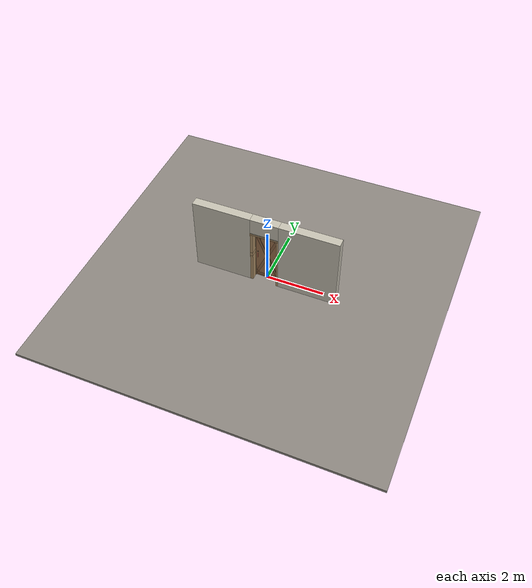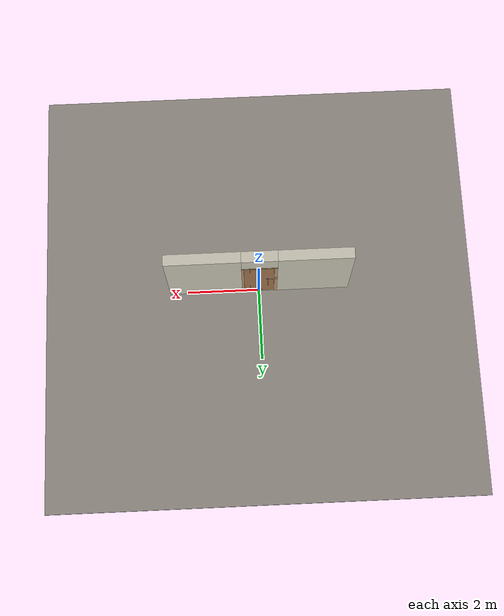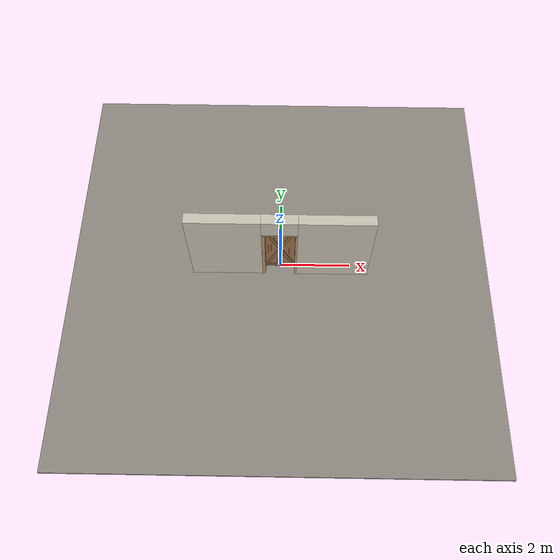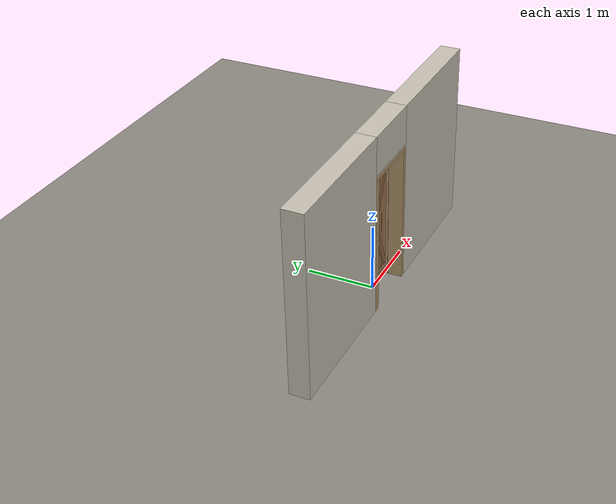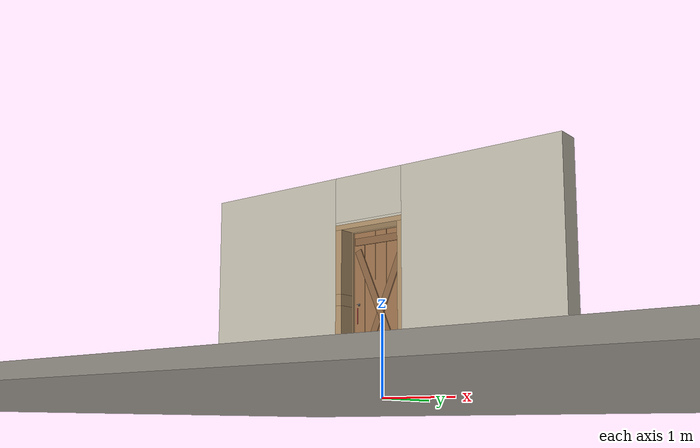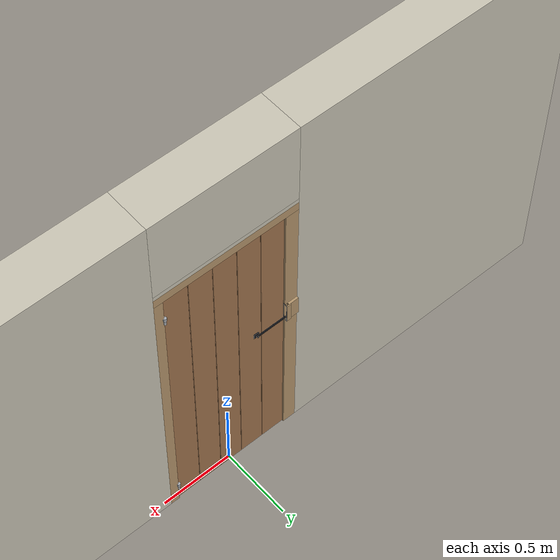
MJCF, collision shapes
<?xml version="1.0" ?>
<mujoco model="db0243_swing_single_full">
  <compiler angle="radian" meshdir="../../hardware" texturedir="../../textures" autolimits="true" inertiafromgeom="false"/>
  <option timestep="0.002" integrator="implicitfast" cone="elliptic" impratio="10" noslip_iterations="3">
    <flag multiccd="enable"/>
  </option>
  <size memory="16M"/>
  <default>
    <geom condim="4" solref="0.005 1" solimp="0.95 0.99 0.001"/>
    <joint solreflimit="0.005 1" solimplimit="0.95 0.99 0.001"/>
    <tendon solreflimit="0.005 1"/>
    <equality solref="0.002 1"/>
  </default>
  <visual>
    <headlight ambient="0.4 0.4 0.4" diffuse="0.7 0.7 0.7" specular="0.2 0.2 0.2"/>
    <quality shadowsize="4096"/>
    <map znear="0.01" zfar="60"/>
  </visual>
  <asset>
    <mesh name="peephole_f829311a59" file="peephole_f829311a59.obj"/>
    <mesh name="strap_hinge_78d1bbb966" file="strap_hinge_78d1bbb966.obj"/>
    <mesh name="thumb_latch_0073ea78ed" file="thumb_latch_0073ea78ed.obj"/>
    <material name="mat_floor" rgba="0.55 0.53 0.5 1" specular="0.2" shininess="0.15" reflectance="0"/>
    <material name="mat_wall" rgba="0.78 0.76 0.7 1" specular="0.2" shininess="0.1" reflectance="0"/>
    <material name="mat_leaf" rgba="0.62 0.45 0.3 1" specular="0.2" shininess="0.5" reflectance="0"/>
    <material name="mat_leaf_brace" rgba="0.558 0.405 0.27 1" specular="0.2" shininess="0.2" reflectance="0"/>
    <material name="mat_hinge" rgba="0.65 0.66 0.68 1" specular="0.74" shininess="0.5" reflectance="0.36"/>
    <material name="mat_op_wrought_iron" rgba="0.08 0.08 0.09 1" specular="0.56" shininess="0.25" reflectance="0.24"/>
    <material name="mat_frame" rgba="0.7 0.58 0.42 1" specular="0.2" shininess="0.5" reflectance="0"/>
    <material name="mat_peephole" rgba="0.85 0.66 0.3 1" specular="0.8" shininess="0.75" reflectance="0.4"/>
    <texture name="skybox" type="skybox" builtin="gradient" rgb1="0.6 0.7 0.85" rgb2="0.9 0.92 0.95" width="256" height="256"/>
  </asset>
  <worldbody>
    <light name="sun" pos="1.5 -2.5 4" dir="-0.3 0.5 -0.8" directional="true" diffuse="0.8 0.8 0.8" specular="0.3 0.3 0.3" castshadow="true"/>
    <light name="fill" pos="-1.5 2.5 3" dir="0.3 -0.5 -0.7" directional="true" diffuse="0.35 0.35 0.4" castshadow="false"/>
    <camera name="robot_view" pos="0 -2.663187 1.734312" xyaxes="1 0 0 0 0.26963 0.962964" fovy="52"/>
    <camera name="far_view" pos="0 2.421187 1.734312" xyaxes="-1 0 0 0 -0.26963 0.962964" fovy="52"/>
    <camera name="iso" pos="-1.932062 -2.256438 2.141063" xyaxes="0.741536 -0.670913 0 0.242917 0.268487 0.932151" fovy="46"/>
    <camera name="detail_handle" pos="-0.1455 -0.857 1.28" xyaxes="0.97561 0.219512 0 -0.070934 0.315262 0.94635" fovy="38"/>
    <geom name="floor" type="box" size="6 6 0.05" pos="0 0 -0.05" material="mat_floor" group="0" contype="1" conaffinity="1" friction="0.8 0.005 0.0001" density="2400"/>
    <geom name="wall_left" type="box" size="0.99975 0.15 1.35" pos="-1.50025 -0.121 1.35" material="mat_wall" group="0" contype="1" conaffinity="1" friction="0.6 0.005 0.0001" density="800"/>
    <geom name="wall_right" type="box" size="1.01475 0.15 1.35" pos="1.48525 -0.121 1.35" material="mat_wall" group="0" contype="1" conaffinity="1" friction="0.6 0.005 0.0001" density="800"/>
    <geom name="wall_header" type="box" size="0.4855 0.15 0.2825" pos="-0.015 -0.121 2.4175" material="mat_wall" group="0" contype="1" conaffinity="1" friction="0.6 0.005 0.0001" density="800"/>
    <geom name="hinge_pintle_0" type="cylinder" size="0.008 0.02" pos="0.4075 0.029 0.133" material="mat_hinge" group="1" contype="0" conaffinity="0" density="7850"/>
    <geom name="hinge_pintle_1" type="cylinder" size="0.008 0.02" pos="0.4075 0.029 1.865" material="mat_hinge" group="1" contype="0" conaffinity="0" density="7850"/>
    <geom name="leaf_latch_bar_keeper_b" type="box" size="0.015 0.0025 0.0005" pos="-0.41 0.034 1.1125" quat="0.5 0.5 0.5 0.5" material="mat_op_wrought_iron" group="1" contype="0" conaffinity="0" density="7800"/>
    <geom name="leaf_latch_bar_keeper_l" type="box" size="0.0025 0.07 0.0005" pos="-0.41 0.0215 1.185" quat="0.5 0.5 0.5 0.5" material="mat_op_wrought_iron" group="1" contype="0" conaffinity="0" density="7800"/>
    <geom name="leaf_latch_bar_keeper_t" type="box" size="0.015 0.0025 0.0005" pos="-0.41 0.034 1.2575" quat="0.5 0.5 0.5 0.5" material="mat_op_wrought_iron" group="1" contype="0" conaffinity="0" density="7800"/>
    <geom name="leaf_latch_bar_keeper_r" type="box" size="0.0025 0.07 0.0005" pos="-0.41 0.0465 1.185" quat="0.5 0.5 0.5 0.5" material="mat_op_wrought_iron" group="1" contype="0" conaffinity="0" density="7800"/>
    <geom name="jamb_hinge" type="box" size="0.03 0.15 1.0225" pos="0.4405 -0.121 1.0225" material="mat_frame" group="0" contype="1" conaffinity="1" friction="0.6 0.005 0.0001" density="750"/>
    <geom name="strike_1185_wall_n" type="box" size="0.045 0.1475 0.07" pos="-0.4555 -0.1235 1.185" material="mat_frame" group="0" contype="1" conaffinity="1" friction="0.6 0.005 0.0001" density="750"/>
    <geom name="strike_1185_wall_p" type="box" size="0.015 0.003 0.07" pos="-0.4255 0.047 1.185" material="mat_frame" group="0" contype="1" conaffinity="1" friction="0.6 0.005 0.0001" density="750"/>
    <geom name="strike_1185_back" type="box" size="0.035 0.01 0.07" pos="-0.4655 0.034 1.185" material="mat_frame" group="0" contype="1" conaffinity="1" friction="0.6 0.005 0.0001" density="750"/>
    <geom name="jamb_strike_0" type="box" size="0.045 0.15 0.5575" pos="-0.4555 -0.121 0.5575" material="mat_frame" group="0" contype="1" conaffinity="1" friction="0.6 0.005 0.0001" density="750"/>
    <geom name="jamb_strike_1" type="box" size="0.045 0.15 0.395" pos="-0.4555 -0.121 1.65" material="mat_frame" group="0" contype="1" conaffinity="1" friction="0.6 0.005 0.0001" density="750"/>
    <geom name="jamb_head" type="box" size="0.4855 0.15 0.03" pos="-0.015 -0.121 2.075" material="mat_frame" group="0" contype="1" conaffinity="1" friction="0.6 0.005 0.0001" density="750"/>
    <geom name="head_stud" type="box" size="0.4855 0.15 0.015" pos="-0.015 -0.121 2.12" material="mat_wall" group="0" contype="1" conaffinity="1" friction="0.6 0.005 0.0001" density="500"/>
    <geom name="stop_hinge" type="box" size="0.0055 0.016 1.0225" pos="0.405 -0.0385 1.0225" material="mat_frame" group="0" contype="1" conaffinity="1" friction="0.6 0.005 0.0001" density="750"/>
    <geom name="stop_strike" type="box" size="0.0055 0.016 1.0225" pos="-0.405 -0.0385 1.0225" material="mat_frame" group="0" contype="1" conaffinity="1" friction="0.6 0.005 0.0001" density="750"/>
    <geom name="stop_head" type="box" size="0.4105 0.016 0.0055" pos="0 -0.0385 2.0395" material="mat_frame" group="0" contype="1" conaffinity="1" friction="0.6 0.005 0.0001" density="750"/>
    <geom name="hinge_pintle_0_strap_0" type="box" size="0.0064 0.02225 0.016" pos="0.4075 -0.00075 0.133" material="mat_hinge" group="1" contype="0" conaffinity="0" density="7850"/>
    <geom name="hinge_pintle_1_strap_0" type="box" size="0.0064 0.02225 0.016" pos="0.4075 -0.00075 1.865" material="mat_hinge" group="1" contype="0" conaffinity="0" density="7850"/>
    <site name="approach_point" pos="0 -1.5 0" quat="1 0 0 0" size="0.05" rgba="0.2 0.9 0.2 0.5" group="4"/>
    <site name="goal_point" pos="0 1.5 0" quat="1 0 0 0" size="0.05" rgba="0.2 0.9 0.2 0.5" group="4"/>
    <site name="door_plane_center" pos="0 0 1.0225" quat="1 0 0 0" size="0.02" rgba="0.2 0.9 0.2 0.5" group="4"/>
    <body name="leaf" pos="0.4105 0 0">
      <inertial pos="-0.404716 0.000316 1.02491" mass="52.903629" quat="0.498112 0.50205 -0.497924 0.501898" diaginertia="3.01452993 18.720460583 21.713386392"/>
      <joint name="leaf_hinge" type="hinge" axis="0 0 -1" pos="-0.003 0.029 0" limited="true" range="0 1.396263" damping="0.210326" frictionloss="8.492064" armature="0.02"/>
      <geom name="leaf_slab" type="box" size="0.4065 0.022 1.016" pos="-0.4095 0 1.025" material="mat_leaf" group="0" contype="1" conaffinity="1" friction="0.4 0.005 0.0001" density="1"/>
      <geom name="leaf_plank_gap_1" type="box" size="0.002 0.023 1.006" pos="-0.1656 0 1.025" material="mat_leaf_brace" group="1" contype="0" conaffinity="0" density="1"/>
      <geom name="leaf_plank_gap_2" type="box" size="0.002 0.023 1.006" pos="-0.3282 0 1.025" material="mat_leaf_brace" group="1" contype="0" conaffinity="0" density="1"/>
      <geom name="leaf_plank_gap_3" type="box" size="0.002 0.023 1.006" pos="-0.4908 0 1.025" material="mat_leaf_brace" group="1" contype="0" conaffinity="0" density="1"/>
      <geom name="leaf_plank_gap_4" type="box" size="0.002 0.023 1.006" pos="-0.6534 0 1.025" material="mat_leaf_brace" group="1" contype="0" conaffinity="0" density="1"/>
      <geom name="leaf_batten_12" type="box" size="0.3765 0.01 0.045" pos="-0.4095 -0.032 0.129" material="mat_leaf_brace" group="1" contype="0" conaffinity="0" density="1"/>
      <geom name="leaf_batten_192" type="box" size="0.3765 0.01 0.045" pos="-0.4095 -0.032 1.921" material="mat_leaf_brace" group="1" contype="0" conaffinity="0" density="1"/>
      <geom name="leaf_brace_z" type="box" size="0.85344 0.01 0.045" pos="-0.4095 -0.032 1.025" quat="0.833751 0 0.55214 0" material="mat_leaf_brace" group="1" contype="0" conaffinity="0" density="1"/>
      <geom name="leaf_brace_x" type="box" size="0.85344 0.01 0.045" pos="-0.4095 -0.032 1.025" quat="0.833751 0 -0.55214 0" material="mat_leaf_brace" group="1" contype="0" conaffinity="0" density="1"/>
      <geom name="hinge_strap_0" type="mesh" mesh="strap_hinge_78d1bbb966" pos="-0.003 0.025 0.159" quat="0 0 0 1" material="mat_hinge" group="1" contype="0" conaffinity="0" density="7850"/>
      <geom name="hinge_strap_eye_0" type="cylinder" size="0.011 0.012" pos="-0.003 0.029 0.159" material="mat_hinge" group="1" contype="0" conaffinity="0" density="7850"/>
      <geom name="hinge_strap_neck_0" type="box" size="0.012 0.006 0.006" pos="-0.003 0.027 0.159" material="mat_hinge" group="1" contype="0" conaffinity="0" density="7850"/>
      <geom name="hinge_strap_1" type="mesh" mesh="strap_hinge_78d1bbb966" pos="-0.003 0.025 1.891" quat="0 0 0 1" material="mat_hinge" group="1" contype="0" conaffinity="0" density="7850"/>
      <geom name="hinge_strap_eye_1" type="cylinder" size="0.011 0.012" pos="-0.003 0.029 1.891" material="mat_hinge" group="1" contype="0" conaffinity="0" density="7850"/>
      <geom name="hinge_strap_neck_1" type="box" size="0.012 0.006 0.006" pos="-0.003 0.027 1.891" material="mat_hinge" group="1" contype="0" conaffinity="0" density="7850"/>
      <geom name="leaf_suffolk_grip" type="mesh" mesh="thumb_latch_0073ea78ed" pos="-0.736 -0.022 1" quat="0 0 -0.707107 0.707107" material="mat_op_wrought_iron" group="1" contype="0" conaffinity="0" density="7000"/>
      <geom name="leaf_suffolk_grip_col" type="capsule" size="0.008 0.09" pos="-0.736 -0.057 1" material="mat_op_wrought_iron" group="3" contype="1" conaffinity="1" rgba="0.8 0.3 0.3 0.25" friction="0.7 0.01 0.0001" density="7000"/>
      <geom name="leaf_latch_bar_pivot" type="box" size="0.018 0.002 0.018" pos="-0.616 0.024 1.14" material="mat_op_wrought_iron" group="1" contype="0" conaffinity="0" density="7000"/>
      <geom name="leaf_latch_bar_pin" type="cylinder" size="0.005 0.01" pos="-0.616 0.032 1.14" quat="0.707107 -0.707107 0 0" material="mat_op_wrought_iron" group="1" contype="0" conaffinity="0" density="7000"/>
      <geom name="peephole" type="mesh" mesh="peephole_f829311a59" pos="-0.4095 -0.022 1.509" quat="0 0 -0.707107 0.707107" material="mat_peephole" group="2" contype="0" conaffinity="0" density="8500"/>
      <site name="leaf_grip_n" pos="-0.736 -0.057 1" quat="1 0 0 0" size="0.012" rgba="0.2 0.9 0.2 0.5" group="4"/>
      <site name="leaf_edge_mid" pos="-0.816 0 1.016" quat="1 0 0 0" size="0.02" rgba="0.2 0.9 0.2 0.5" group="4"/>
      <body name="leaf_thumb" pos="-0.736 -0.022 1.145">
        <inertial pos="0 -0.002591 -0.005803" mass="0.128464" quat="0.698937 -0.107178 -0.107178 -0.698937" diaginertia="0.000010795 0.000049998 0.000051452"/>
        <joint name="leaf_thumb_hinge" type="hinge" axis="1 0 0" limited="true" range="0 0.3" damping="0.155346" frictionloss="0.032" stiffness="0.6" springref="-0.5" armature="0.01"/>
        <geom name="leaf_thumb_geom" type="box" size="0.015 0.014 0.003" pos="0 -0.02 0" material="mat_op_wrought_iron" group="0" contype="1" conaffinity="1" friction="0.6 0.005 0.0001" density="7000"/>
        <geom name="leaf_thumb_boss" type="box" size="0.012 0.008 0.013" pos="0 -0.004 -0.005" material="mat_op_wrought_iron" group="1" contype="0" conaffinity="0" density="7000"/>
        <geom name="leaf_thumb_lifter" type="box" size="0.004 0.026 0.004" pos="0 0.028 -0.017" material="mat_op_wrought_iron" group="1" contype="0" conaffinity="0" density="7000"/>
        <site name="leaf_thumb_push" pos="0 -0.024 0.005" quat="1 0 0 0" size="0.01" rgba="0.2 0.9 0.2 0.5" group="4"/>
      </body>
      <body name="leaf_latch_bar" pos="-0.616 0.034 1.14">
        <inertial pos="-0.106 0 0" mass="0.25" quat="0 0 -0.707107 0.707107" diaginertia="0.000004465 0.000904065 0.000904065"/>
        <joint name="leaf_latch_bar_hinge" type="hinge" axis="0 1 0" limited="true" range="0 0.6" damping="0.01" frictionloss="0.01" armature="0.005"/>
        <geom name="leaf_latch_bar_geom" type="capsule" size="0.006 0.1" pos="-0.106 0 0" quat="0.707107 0 -0.707107 0" material="mat_op_wrought_iron" group="0" contype="1" conaffinity="1" friction="0.6 0.005 0.0001" density="7850"/>
      </body>
    </body>
  </worldbody>
  <equality>
    <joint name="leaf_thumb_couple" joint1="leaf_latch_bar_hinge" joint2="leaf_thumb_hinge" polycoef="0 2 0 0 0" active="true"/>
  </equality>
  <sensor>
    <jointpos name="leaf_hinge_pos" joint="leaf_hinge"/>
    <jointvel name="leaf_hinge_vel" joint="leaf_hinge"/>
    <jointpos name="leaf_thumb_hinge_pos" joint="leaf_thumb_hinge"/>
    <jointvel name="leaf_thumb_hinge_vel" joint="leaf_thumb_hinge"/>
    <jointpos name="leaf_latch_bar_hinge_pos" joint="leaf_latch_bar_hinge"/>
    <jointvel name="leaf_latch_bar_hinge_vel" joint="leaf_latch_bar_hinge"/>
  </sensor>
</mujoco>
